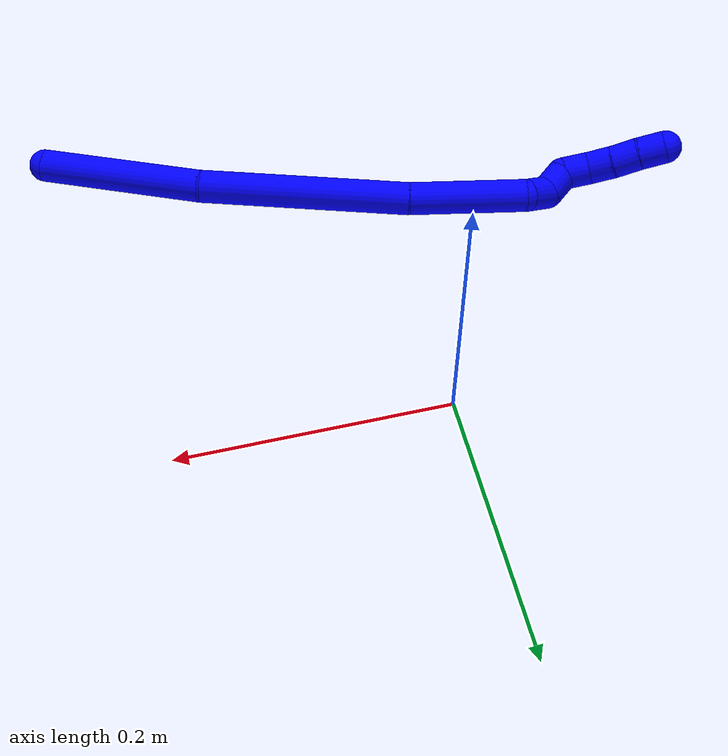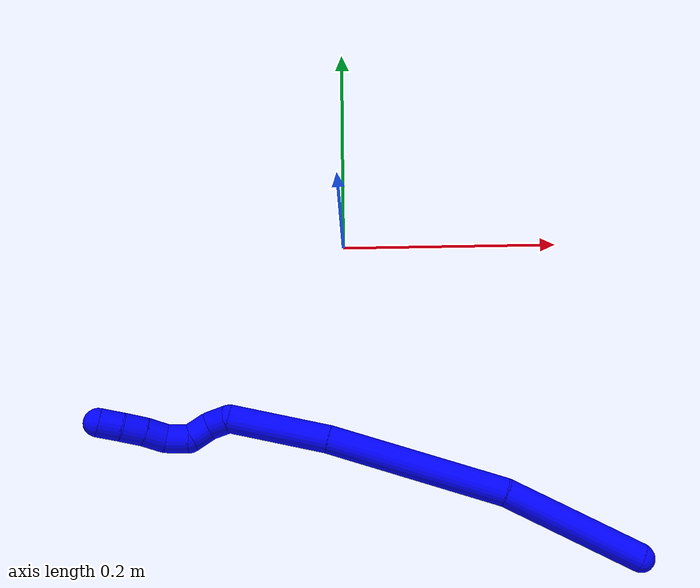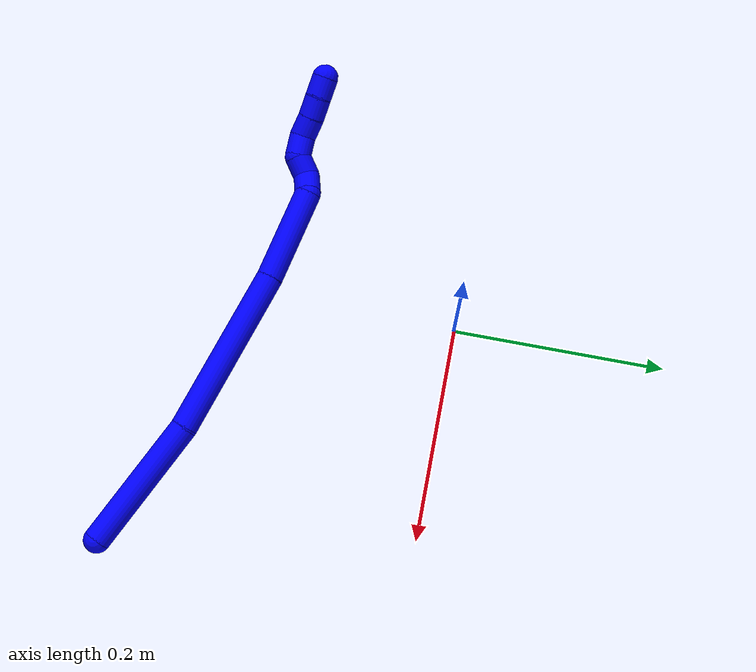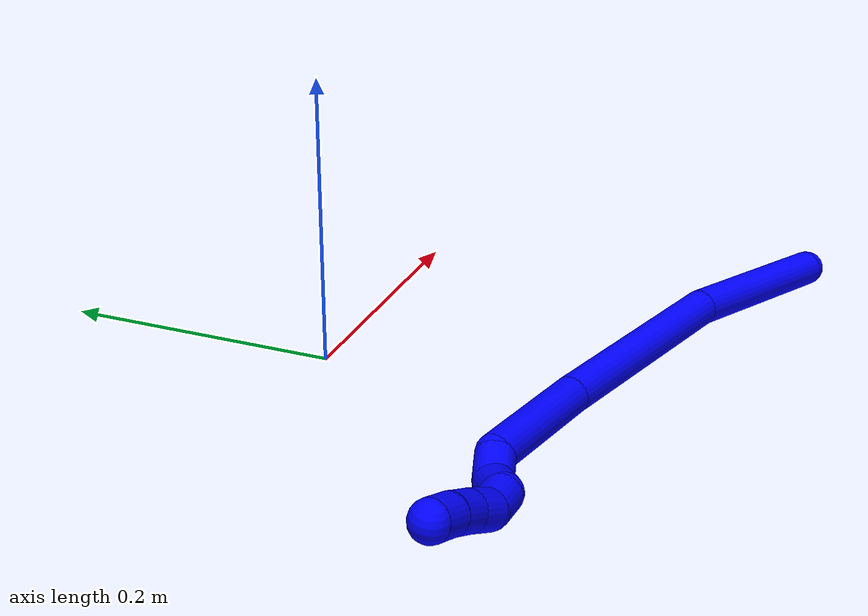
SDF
<sdf version="1.7">
 <world name="default">
  <plugin name="TubeGeneratorPlugin" filename="libtube_generator_plugin.so"/>
  <model name="photoneo_s_sensor">
   <static>1</static>
   <pose>0 0 2 1.57079 1.57079 3.14159</pose>
   <link name="link">
    <inertial><mass>0.1</mass></inertial>
    <sensor name="sensor" type="depth">
     <update_rate>30</update_rate>
     <camera>
      <horizontal_fov>1.22</horizontal_fov>
      <image><width>1920</width><height>1200</height><format>B8G8R8</format></image>
      <clip><near>0.1</near><far>4</far></clip>
      <depth_camera><output>points</output></depth_camera>
     </camera>
     <plugin name="camera_plugin" filename="libgazebo_ros_depth_camera.so">
      <baseline>0.2</baseline>
      <alwaysOn>1</alwaysOn>
      <updateRate>0.0</updateRate>
      <cameraName>camera_ir</cameraName>
      <imageTopicName>/camera/color/image_raw</imageTopicName>
      <cameraInfoTopicName>/camera/color/camera_info</cameraInfoTopicName>
      <depthImageTopicName>/camera/depth/image_raw</depthImageTopicName>
      <depthImageCameraInfoTopicName>/camera/depth/camera_info</depthImageCameraInfoTopicName>
      <pointCloudTopicName>/camera/depth/points</pointCloudTopicName>
      <frameName>fr_optical</frameName>
      <pointCloudCutoff>0.1</pointCloudCutoff>
      <pointCloudCutoffMax>2.0</pointCloudCutoffMax>
      <distortionK1>0</distortionK1>
      <distortionK2>0</distortionK2>
      <distortionK3>0</distortionK3>
      <distortionT1>0</distortionT1>
      <distortionT2>0</distortionT2>
      <CxPrime>0</CxPrime>
      <Cx>0</Cx>
      <Cy>0</Cy>
      <focalLength>0</focalLength>
      <hackBaseline>0</hackBaseline>
     </plugin>
    </sensor>
   </link>
  </model>
  <gravity>0 0 -9.8</gravity>
  <magnetic_field>6e-06 2.3e-05 -4.2e-05</magnetic_field>
  <atmosphere type="adiabatic"/>
  <physics name="default_physics" default="0" type="ode">
   <max_step_size>0.003</max_step_size>
   <real_time_factor>1</real_time_factor>
   <real_time_update_rate>1000</real_time_update_rate>
   <max_contacts>10000</max_contacts>
   <ode>
    <solver>
     <type>quick</type>
     <iters>100</iters>
     <sor>1.3</sor>
     <use_dynamic_moi_rescaling>0</use_dynamic_moi_rescaling>
    </solver>
    <constraints>
     <contact_max_correcting_vel>0</contact_max_correcting_vel>
     <contact_surface_layer>0.001</contact_surface_layer>
     <cfm>0</cfm>
     <erp>0.2</erp>
    </constraints>
   </ode>
  </physics>
  <scene><ambient>0.4 0.4 0.4 1</ambient><background>0.7 0.7 0.7 1</background><shadows>0</shadows></scene>
  <audio><device>default</device></audio>
  <spherical_coordinates>
   <surface_model>EARTH_WGS84</surface_model>
   <latitude_deg>0</latitude_deg>
   <longitude_deg>0</longitude_deg>
   <elevation>0</elevation>
   <heading_deg>0</heading_deg>
  </spherical_coordinates>
  <model name="bin">
   <static>1</static>
   <link name="bottom">
    <collision name="collision-bottom">
     <pose>0 0 -0.01 0 -0 0</pose>
     <geometry><box><size>0.8 0.6 0.02</size></box></geometry>
     <surface>
      <friction><ode><mu>100</mu><mu2>100</mu2></ode></friction>
      <contact><collide_bitmask>65535</collide_bitmask></contact>
     </surface>
    </collision>
   </link>
   <link name="west_wall">
    <collision name="collision-west_wall">
     <pose>-0.41 0 0.1 0 -0 0</pose>
     <geometry><box><size>0.02 0.6 0.2</size></box></geometry>
     <surface>
      <friction><ode><mu>100</mu><mu2>100</mu2></ode></friction>
      <contact><collide_bitmask>65535</collide_bitmask></contact>
     </surface>
    </collision>
   </link>
   <link name="east_wall">
    <collision name="collision-east_wall">
     <pose>0.41 0 0.1 0 -0 0</pose>
     <geometry><box><size>0.02 0.6 0.2</size></box></geometry>
     <surface>
      <friction><ode><mu>100</mu><mu2>100</mu2></ode></friction>
      <contact><collide_bitmask>65535</collide_bitmask></contact>
     </surface>
    </collision>
   </link>
   <link name="south_wall">
    <collision name="collision-south_wall">
     <pose>0 -0.31 0.1 0 -0 0</pose>
     <geometry><box><size>0.8 0.02 0.2</size></box></geometry>
     <surface>
      <friction><ode><mu>100</mu><mu2>100</mu2></ode></friction>
      <contact><collide_bitmask>65535</collide_bitmask></contact>
     </surface>
    </collision>
   </link>
   <link name="north_wall">
    <collision name="collision-north_wall">
     <pose>0 0.31 0.1 0 -0 0</pose>
     <geometry><box><size>0.8 0.02 0.2</size></box></geometry>
     <surface>
      <friction><ode><mu>100</mu><mu2>100</mu2></ode></friction>
      <contact><collide_bitmask>65535</collide_bitmask></contact>
     </surface>
    </collision>
   </link>
  </model>
  <model name="1">
   <static>0</static>
   <link name="1">
    <collision name="collision-cylinder-e_1_1_4">
     <pose>-0.056939 0.028366 -0.002515 -1.65924 -1.10704 1.18775</pose>
     <geometry><cylinder><radius>0.0125</radius><length>0.127327</length></cylinder></geometry>
     <surface>
      <friction><ode><mu>1.16</mu><mu2>1.16</mu2><slip1>0</slip1><slip2>0</slip2></ode></friction>
      <contact><ode><kp>1e+06</kp><kd>1</kd><max_vel>0</max_vel><min_depth>0.001</min_depth></ode></contact>
     </surface>
    </collision>
    <visual name="visual-cylinder-e_1_1_4">
     <pose>-0.056939 0.028366 -0.002515 -1.65924 -1.10704 1.18775</pose>
     <geometry><cylinder><radius>0.0125</radius><length>0.127327</length></cylinder></geometry>
     <material><ambient>0 0 1 1</ambient></material>
    </visual>
    <collision name="collision-cylinder-e_2_4_5">
     <pose>-0.179114 0.103763 -0.004331 -1.55592 -0.946103 0.934091</pose>
     <geometry><cylinder><radius>0.0125</radius><length>0.160848</length></cylinder></geometry>
     <surface>
      <friction><ode><mu>1.16</mu><mu2>1.16</mu2><slip1>0</slip1><slip2>0</slip2></ode></friction>
      <contact><ode><kp>1e+06</kp><kd>1</kd><max_vel>0</max_vel><min_depth>0.001</min_depth></ode></contact>
     </surface>
    </collision>
    <visual name="visual-cylinder-e_2_4_5">
     <pose>-0.179114 0.103763 -0.004331 -1.55592 -0.946103 0.934091</pose>
     <geometry><cylinder><radius>0.0125</radius><length>0.160848</length></cylinder></geometry>
     <material><ambient>0 0 1 1</ambient></material>
    </visual>
    <collision name="collision-cylinder-e_3_5_6">
     <pose>-0.278349 0.179885 -0.005203 -1.62475 -0.862323 0.904028</pose>
     <geometry><cylinder><radius>0.0125</radius><length>0.089547</length></cylinder></geometry>
     <surface>
      <friction><ode><mu>1.16</mu><mu2>1.16</mu2><slip1>0</slip1><slip2>0</slip2></ode></friction>
      <contact><ode><kp>1e+06</kp><kd>1</kd><max_vel>0</max_vel><min_depth>0.001</min_depth></ode></contact>
     </surface>
    </collision>
    <visual name="visual-cylinder-e_3_5_6">
     <pose>-0.278349 0.179885 -0.005203 -1.62475 -0.862323 0.904028</pose>
     <geometry><cylinder><radius>0.0125</radius><length>0.089547</length></cylinder></geometry>
     <material><ambient>0 0 1 1</ambient></material>
    </visual>
    <collision name="collision-cylinder-e_4_6_7">
     <pose>-0.315609 0.21842 -0.003823 -1.26795 -0.318369 0.234981</pose>
     <geometry><cylinder><radius>0.0125</radius><length>0.020836</length></cylinder></geometry>
     <surface>
      <friction><ode><mu>1.16</mu><mu2>1.16</mu2><slip1>0</slip1><slip2>0</slip2></ode></friction>
      <contact><ode><kp>1e+06</kp><kd>1</kd><max_vel>0</max_vel><min_depth>0.001</min_depth></ode></contact>
     </surface>
    </collision>
    <visual name="visual-cylinder-e_4_6_7">
     <pose>-0.315609 0.21842 -0.003823 -1.26795 -0.318369 0.234981</pose>
     <geometry><cylinder><radius>0.0125</radius><length>0.020836</length></cylinder></geometry>
     <material><ambient>0 0 1 1</ambient></material>
    </visual>
    <collision name="collision-cylinder-e_5_7_8">
     <pose>-0.319274 0.237537 -0.004284 -1.90997 -0.039365 0.055624</pose>
     <geometry><cylinder><radius>0.0125</radius><length>0.020529</length></cylinder></geometry>
     <surface>
      <friction><ode><mu>1.16</mu><mu2>1.16</mu2><slip1>0</slip1><slip2>0</slip2></ode></friction>
      <contact><ode><kp>1e+06</kp><kd>1</kd><max_vel>0</max_vel><min_depth>0.001</min_depth></ode></contact>
     </surface>
    </collision>
    <visual name="visual-cylinder-e_5_7_8">
     <pose>-0.319274 0.237537 -0.004284 -1.90997 -0.039365 0.055624</pose>
     <geometry><cylinder><radius>0.0125</radius><length>0.020529</length></cylinder></geometry>
     <material><ambient>0 0 1 1</ambient></material>
    </visual>
    <collision name="collision-cylinder-e_6_8_9">
     <pose>-0.326184 0.255173 -0.008885 -1.71898 -0.679612 0.778551</pose>
     <geometry><cylinder><radius>0.0125</radius><length>0.020704</length></cylinder></geometry>
     <surface>
      <friction><ode><mu>1.16</mu><mu2>1.16</mu2><slip1>0</slip1><slip2>0</slip2></ode></friction>
      <contact><ode><kp>1e+06</kp><kd>1</kd><max_vel>0</max_vel><min_depth>0.001</min_depth></ode></contact>
     </surface>
    </collision>
    <visual name="visual-cylinder-e_6_8_9">
     <pose>-0.326184 0.255173 -0.008885 -1.71898 -0.679612 0.778551</pose>
     <geometry><cylinder><radius>0.0125</radius><length>0.020704</length></cylinder></geometry>
     <material><ambient>0 0 1 1</ambient></material>
    </visual>
    <collision name="collision-cylinder-e_7_9_10">
     <pose>-0.340372 0.268084 -0.014214 -2.26762 -0.872215 1.56851</pose>
     <geometry><cylinder><radius>0.0125</radius><length>0.020061</length></cylinder></geometry>
     <surface>
      <friction><ode><mu>1.16</mu><mu2>1.16</mu2><slip1>0</slip1><slip2>0</slip2></ode></friction>
      <contact><ode><kp>1e+06</kp><kd>1</kd><max_vel>0</max_vel><min_depth>0.001</min_depth></ode></contact>
     </surface>
    </collision>
    <visual name="visual-cylinder-e_7_9_10">
     <pose>-0.340372 0.268084 -0.014214 -2.26762 -0.872215 1.56851</pose>
     <geometry><cylinder><radius>0.0125</radius><length>0.020061</length></cylinder></geometry>
     <material><ambient>0 0 1 1</ambient></material>
    </visual>
    <collision name="collision-cylinder-e_8_10_11">
     <pose>-0.355141 0.278744 -0.022581 -2.20774 -0.78416 1.37393</pose>
     <geometry><cylinder><radius>0.0125</radius><length>0.020075</length></cylinder></geometry>
     <surface>
      <friction><ode><mu>1.16</mu><mu2>1.16</mu2><slip1>0</slip1><slip2>0</slip2></ode></friction>
      <contact><ode><kp>1e+06</kp><kd>1</kd><max_vel>0</max_vel><min_depth>0.001</min_depth></ode></contact>
     </surface>
    </collision>
    <visual name="visual-cylinder-e_8_10_11">
     <pose>-0.355141 0.278744 -0.022581 -2.20774 -0.78416 1.37393</pose>
     <geometry><cylinder><radius>0.0125</radius><length>0.020075</length></cylinder></geometry>
     <material><ambient>0 0 1 1</ambient></material>
    </visual>
    <collision name="collision-cylinder-e_9_11_2">
     <pose>-0.369449 0.290584 -0.030131 -2.0678 -0.802912 1.23906</pose>
     <geometry><cylinder><radius>0.0125</radius><length>0.020071</length></cylinder></geometry>
     <surface>
      <friction><ode><mu>1.16</mu><mu2>1.16</mu2><slip1>0</slip1><slip2>0</slip2></ode></friction>
      <contact><ode><kp>1e+06</kp><kd>1</kd><max_vel>0</max_vel><min_depth>0.001</min_depth></ode></contact>
     </surface>
    </collision>
    <visual name="visual-cylinder-e_9_11_2">
     <pose>-0.369449 0.290584 -0.030131 -2.0678 -0.802912 1.23906</pose>
     <geometry><cylinder><radius>0.0125</radius><length>0.020071</length></cylinder></geometry>
     <material><ambient>0 0 1 1</ambient></material>
    </visual>
    <collision name="collision-sphere-2">
     <pose>-0.376669 0.296712 -0.033455 0 -0 0</pose>
     <geometry><sphere><radius>0.0125</radius></sphere></geometry>
     <surface>
      <friction><ode><mu>1.16</mu><mu2>1.16</mu2><slip1>0</slip1><slip2>0</slip2></ode></friction>
      <contact><ode><kp>1e+06</kp><kd>1</kd><max_vel>0</max_vel><min_depth>0.001</min_depth></ode></contact>
     </surface>
    </collision>
    <visual name="visual-sphere-2">
     <pose>-0.376669 0.296712 -0.033455 0 -0 0</pose>
     <geometry><sphere><radius>0.0125</radius></sphere></geometry>
     <material><ambient>0 0 1 1</ambient></material>
    </visual>
    <collision name="collision-sphere-11">
     <pose>-0.36223 0.284456 -0.026807 0 -0 0</pose>
     <geometry><sphere><radius>0.0125</radius></sphere></geometry>
     <surface>
      <friction><ode><mu>1.16</mu><mu2>1.16</mu2><slip1>0</slip1><slip2>0</slip2></ode></friction>
      <contact><ode><kp>1e+06</kp><kd>1</kd><max_vel>0</max_vel><min_depth>0.001</min_depth></ode></contact>
     </surface>
    </collision>
    <visual name="visual-sphere-11">
     <pose>-0.36223 0.284456 -0.026807 0 -0 0</pose>
     <geometry><sphere><radius>0.0125</radius></sphere></geometry>
     <material><ambient>0 0 1 1</ambient></material>
    </visual>
    <collision name="collision-sphere-10">
     <pose>-0.348053 0.273031 -0.018355 0 -0 0</pose>
     <geometry><sphere><radius>0.0125</radius></sphere></geometry>
     <surface>
      <friction><ode><mu>1.16</mu><mu2>1.16</mu2><slip1>0</slip1><slip2>0</slip2></ode></friction>
      <contact><ode><kp>1e+06</kp><kd>1</kd><max_vel>0</max_vel><min_depth>0.001</min_depth></ode></contact>
     </surface>
    </collision>
    <visual name="visual-sphere-10">
     <pose>-0.348053 0.273031 -0.018355 0 -0 0</pose>
     <geometry><sphere><radius>0.0125</radius></sphere></geometry>
     <material><ambient>0 0 1 1</ambient></material>
    </visual>
    <collision name="collision-sphere-9">
     <pose>-0.332691 0.263136 -0.010074 0 -0 0</pose>
     <geometry><sphere><radius>0.0125</radius></sphere></geometry>
     <surface>
      <friction><ode><mu>1.16</mu><mu2>1.16</mu2><slip1>0</slip1><slip2>0</slip2></ode></friction>
      <contact><ode><kp>1e+06</kp><kd>1</kd><max_vel>0</max_vel><min_depth>0.001</min_depth></ode></contact>
     </surface>
    </collision>
    <visual name="visual-sphere-9">
     <pose>-0.332691 0.263136 -0.010074 0 -0 0</pose>
     <geometry><sphere><radius>0.0125</radius></sphere></geometry>
     <material><ambient>0 0 1 1</ambient></material>
    </visual>
    <collision name="collision-sphere-4">
     <pose>-0.113879 0.056732 -0.005031 0 -0 0</pose>
     <geometry><sphere><radius>0.0125</radius></sphere></geometry>
     <surface>
      <friction><ode><mu>1.16</mu><mu2>1.16</mu2><slip1>0</slip1><slip2>0</slip2></ode></friction>
      <contact><ode><kp>1e+06</kp><kd>1</kd><max_vel>0</max_vel><min_depth>0.001</min_depth></ode></contact>
     </surface>
    </collision>
    <visual name="visual-sphere-4">
     <pose>-0.113879 0.056732 -0.005031 0 -0 0</pose>
     <geometry><sphere><radius>0.0125</radius></sphere></geometry>
     <material><ambient>0 0 1 1</ambient></material>
    </visual>
    <collision name="collision-sphere-1">
     <geometry><sphere><radius>0.0125</radius></sphere></geometry>
     <surface>
      <friction><ode><mu>1.16</mu><mu2>1.16</mu2><slip1>0</slip1><slip2>0</slip2></ode></friction>
      <contact><ode><kp>1e+06</kp><kd>1</kd><max_vel>0</max_vel><min_depth>0.001</min_depth></ode></contact>
     </surface>
    </collision>
    <visual name="visual-sphere-1">
     <geometry><sphere><radius>0.0125</radius></sphere></geometry>
     <material><ambient>0 0 1 1</ambient></material>
    </visual>
    <collision name="collision-sphere-8">
     <pose>-0.319678 0.247209 -0.007697 0 -0 0</pose>
     <geometry><sphere><radius>0.0125</radius></sphere></geometry>
     <surface>
      <friction><ode><mu>1.16</mu><mu2>1.16</mu2><slip1>0</slip1><slip2>0</slip2></ode></friction>
      <contact><ode><kp>1e+06</kp><kd>1</kd><max_vel>0</max_vel><min_depth>0.001</min_depth></ode></contact>
     </surface>
    </collision>
    <visual name="visual-sphere-8">
     <pose>-0.319678 0.247209 -0.007697 0 -0 0</pose>
     <geometry><sphere><radius>0.0125</radius></sphere></geometry>
     <material><ambient>0 0 1 1</ambient></material>
    </visual>
    <collision name="collision-sphere-5">
     <pose>-0.24435 0.150794 -0.003632 0 -0 0</pose>
     <geometry><sphere><radius>0.0125</radius></sphere></geometry>
     <surface>
      <friction><ode><mu>1.16</mu><mu2>1.16</mu2><slip1>0</slip1><slip2>0</slip2></ode></friction>
      <contact><ode><kp>1e+06</kp><kd>1</kd><max_vel>0</max_vel><min_depth>0.001</min_depth></ode></contact>
     </surface>
    </collision>
    <visual name="visual-sphere-5">
     <pose>-0.24435 0.150794 -0.003632 0 -0 0</pose>
     <geometry><sphere><radius>0.0125</radius></sphere></geometry>
     <material><ambient>0 0 1 1</ambient></material>
    </visual>
    <collision name="collision-sphere-6">
     <pose>-0.312348 0.208976 -0.006774 0 -0 0</pose>
     <geometry><sphere><radius>0.0125</radius></sphere></geometry>
     <surface>
      <friction><ode><mu>1.16</mu><mu2>1.16</mu2><slip1>0</slip1><slip2>0</slip2></ode></friction>
      <contact><ode><kp>1e+06</kp><kd>1</kd><max_vel>0</max_vel><min_depth>0.001</min_depth></ode></contact>
     </surface>
    </collision>
    <visual name="visual-sphere-6">
     <pose>-0.312348 0.208976 -0.006774 0 -0 0</pose>
     <geometry><sphere><radius>0.0125</radius></sphere></geometry>
     <material><ambient>0 0 1 1</ambient></material>
    </visual>
    <collision name="collision-sphere-7">
     <pose>-0.31887 0.227864 -0.000872 0 -0 0</pose>
     <geometry><sphere><radius>0.0125</radius></sphere></geometry>
     <surface>
      <friction><ode><mu>1.16</mu><mu2>1.16</mu2><slip1>0</slip1><slip2>0</slip2></ode></friction>
      <contact><ode><kp>1e+06</kp><kd>1</kd><max_vel>0</max_vel><min_depth>0.001</min_depth></ode></contact>
     </surface>
    </collision>
    <visual name="visual-sphere-7">
     <pose>-0.31887 0.227864 -0.000872 0 -0 0</pose>
     <geometry><sphere><radius>0.0125</radius></sphere></geometry>
     <material><ambient>0 0 1 1</ambient></material>
    </visual>
    <inertial>
     <pose>-0.204485 0.135854 -0.006355 0 -0 0</pose>
     <mass>0.5</mass>
     <inertia>
      <ixx>0.000429</ixx>
      <ixy>0</ixy>
      <ixz>0</ixz>
      <iyy>0.000711</iyy>
      <iyz>0</iyz>
      <izz>0.000162</izz>
     </inertia>
    </inertial>
   </link>
   <pose>0.252161 -0.285019 0.012272 -3.04944 0.06329 -0.926022</pose>
  </model>
 </world>
</sdf>
